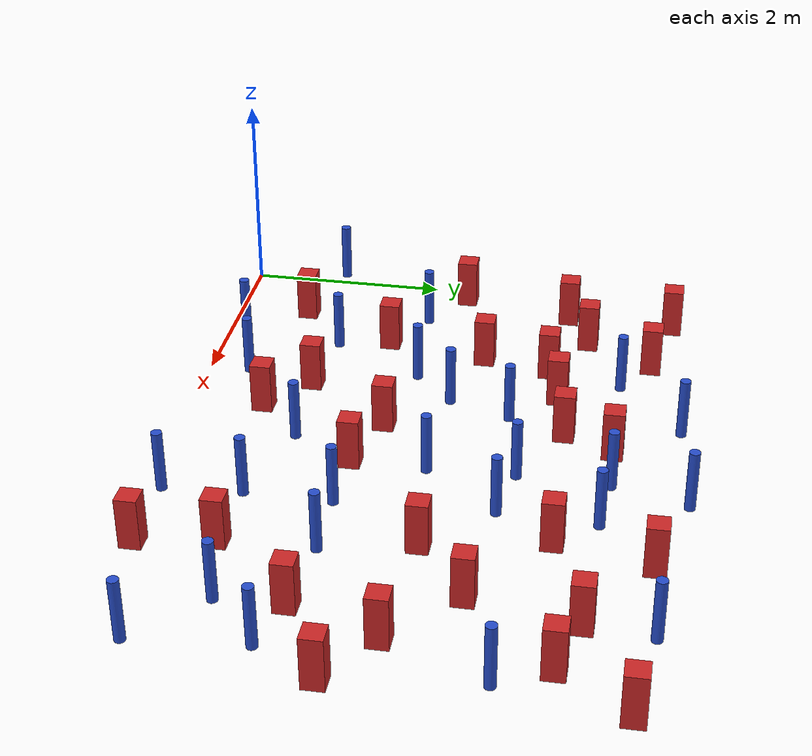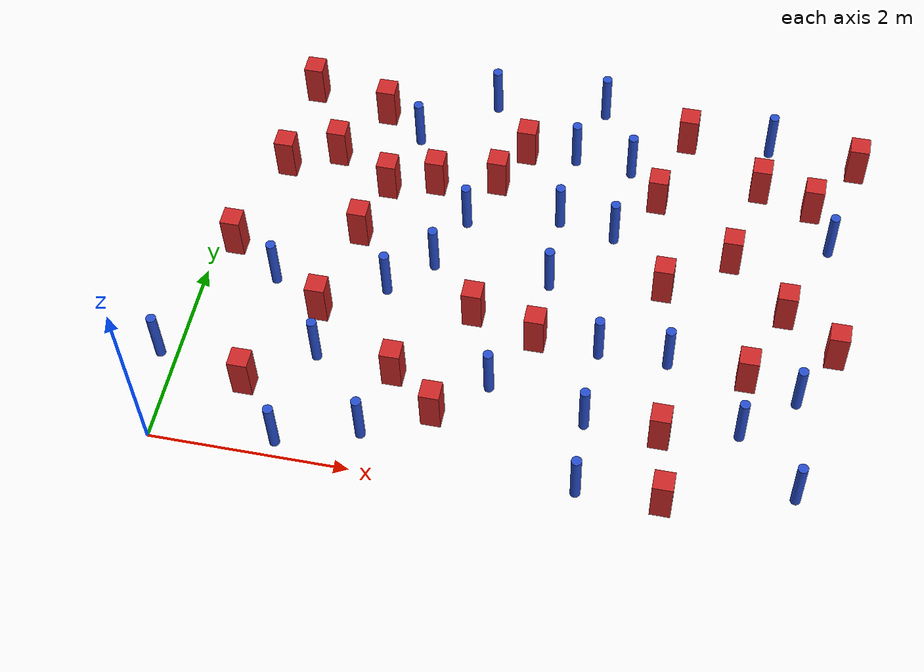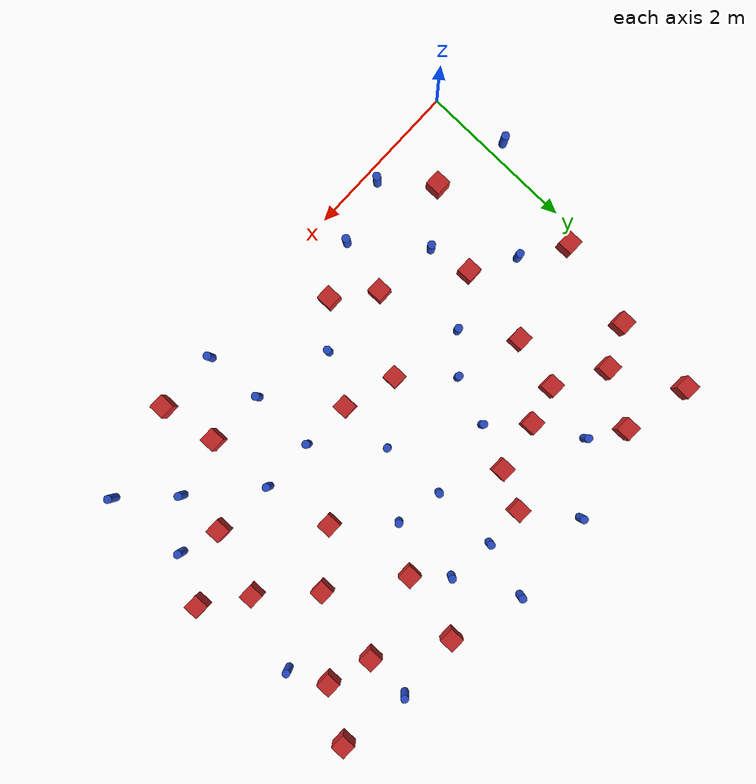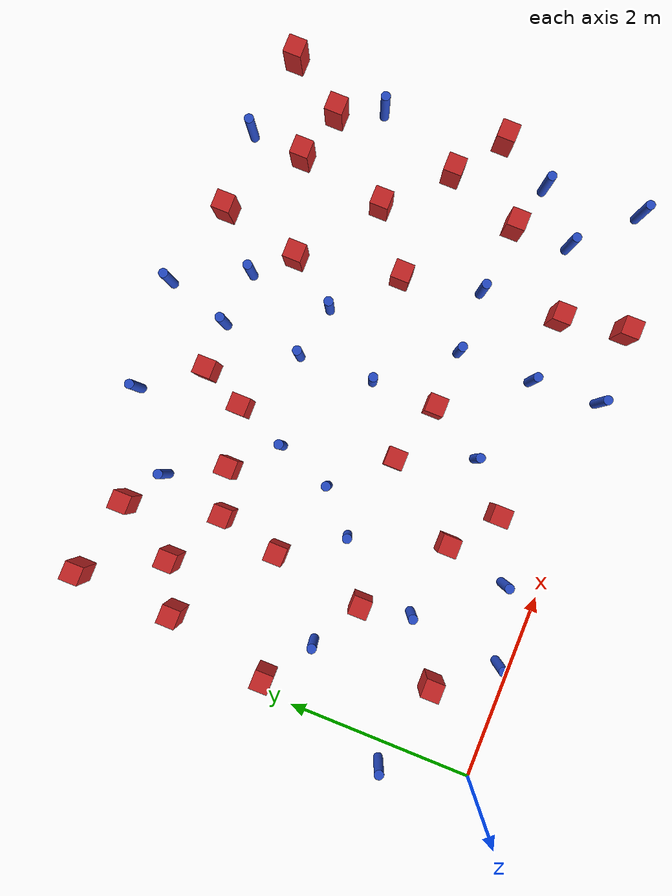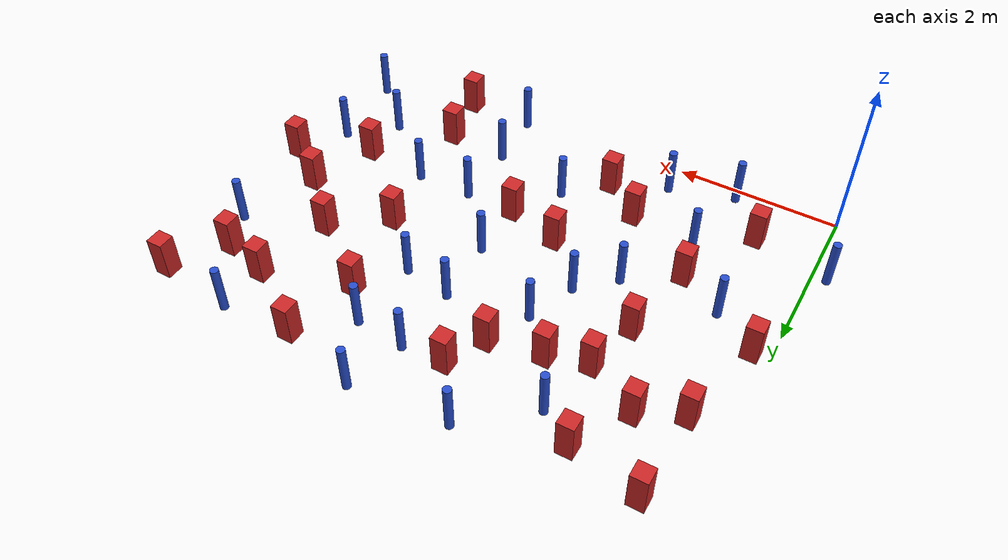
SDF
<sdf version="1.6">
 <model name="dense_31">
  <model name="square_post_obstacle1">
   <static>true</static>
   <pose>0.463909834269 3.49342118369 1.91545236811e-07 -7.35059704564e-06 1.12565212e-07 2.39332434364e-05</pose>
   <link name="link">
    <pose>0 0 0.25 0 -0 0</pose>
    <inertial>
     <mass>100</mass>
     <inertia>
      <ixx>0.166667</ixx>
      <ixy>0</ixy>
      <ixz>0</ixz>
      <iyy>0.166667</iyy>
      <iyz>0</iyz>
      <izz>0.166667</izz>
     </inertia>
    </inertial>
    <collision name="collision"><geometry><box><size>.2 .2 .5</size></box></geometry></collision>
    <visual name="visual">
     <geometry><box><size>.2 .2 .5</size></box></geometry>
     <material>
      <script><name>Gazebo/Red</name><uri>file://media/materials/scripts/gazebo.material</uri></script>
     </material>
    </visual>
   </link>
  </model>
  <model name="pole_obstacle4">
   <static>true</static>
   <pose>4.11311792491 0.900247781949 7.38925637345e-09 -8.47170692799e-08 1.24976765038e-08 -1.74513093018e-07</pose>
   <link name="link">
    <pose>0 0 0.3 0 -0 0</pose>
    <inertial>
     <mass>1</mass>
     <inertia><ixx>0.145833</ixx><ixy>0</ixy><ixz>0</ixz><iyy>0.145833</iyy><iyz>0</iyz><izz>0.125</izz></inertia>
    </inertial>
    <collision name="collision">
     <geometry><cylinder><radius>0.05</radius><length>.6</length></cylinder></geometry>
    </collision>
    <visual name="visual">
     <geometry><cylinder><radius>0.05</radius><length>.6</length></cylinder></geometry>
     <material>
      <script><name>Gazebo/Blue</name><uri>file://media/materials/scripts/gazebo.material</uri></script>
     </material>
    </visual>
   </link>
  </model>
  <model name="square_post_obstacle12">
   <static>true</static>
   <pose>4.85128423616 0.870556990266 1.91545236811e-07 -7.35059704564e-06 1.12565212e-07 2.39332434364e-05</pose>
   <link name="link">
    <pose>0 0 0.25 0 -0 0</pose>
    <inertial>
     <mass>100</mass>
     <inertia>
      <ixx>0.166667</ixx>
      <ixy>0</ixy>
      <ixz>0</ixz>
      <iyy>0.166667</iyy>
      <iyz>0</iyz>
      <izz>0.166667</izz>
     </inertia>
    </inertial>
    <collision name="collision"><geometry><box><size>.2 .2 .5</size></box></geometry></collision>
    <visual name="visual">
     <geometry><box><size>.2 .2 .5</size></box></geometry>
     <material>
      <script><name>Gazebo/Red</name><uri>file://media/materials/scripts/gazebo.material</uri></script>
     </material>
    </visual>
   </link>
  </model>
  <model name="square_post_obstacle13">
   <static>true</static>
   <pose>4.42640117851 3.71198191929 1.91545236811e-07 -7.35059704564e-06 1.12565212e-07 2.39332434364e-05</pose>
   <link name="link">
    <pose>0 0 0.25 0 -0 0</pose>
    <inertial>
     <mass>100</mass>
     <inertia>
      <ixx>0.166667</ixx>
      <ixy>0</ixy>
      <ixz>0</ixz>
      <iyy>0.166667</iyy>
      <iyz>0</iyz>
      <izz>0.166667</izz>
     </inertia>
    </inertial>
    <collision name="collision"><geometry><box><size>.2 .2 .5</size></box></geometry></collision>
    <visual name="visual">
     <geometry><box><size>.2 .2 .5</size></box></geometry>
     <material>
      <script><name>Gazebo/Red</name><uri>file://media/materials/scripts/gazebo.material</uri></script>
     </material>
    </visual>
   </link>
  </model>
  <model name="square_post_obstacle18">
   <static>true</static>
   <pose>4.64170518958 2.58827040064 1.91545236811e-07 -7.35059704564e-06 1.12565212e-07 2.39332434364e-05</pose>
   <link name="link">
    <pose>0 0 0.25 0 -0 0</pose>
    <inertial>
     <mass>100</mass>
     <inertia>
      <ixx>0.166667</ixx>
      <ixy>0</ixy>
      <ixz>0</ixz>
      <iyy>0.166667</iyy>
      <iyz>0</iyz>
      <izz>0.166667</izz>
     </inertia>
    </inertial>
    <collision name="collision"><geometry><box><size>.2 .2 .5</size></box></geometry></collision>
    <visual name="visual">
     <geometry><box><size>.2 .2 .5</size></box></geometry>
     <material>
      <script><name>Gazebo/Red</name><uri>file://media/materials/scripts/gazebo.material</uri></script>
     </material>
    </visual>
   </link>
  </model>
  <model name="square_post_obstacle22">
   <static>true</static>
   <pose>2.95675925891 4.12485396174 1.91545236811e-07 -7.35059704564e-06 1.12565212e-07 2.39332434364e-05</pose>
   <link name="link">
    <pose>0 0 0.25 0 -0 0</pose>
    <inertial>
     <mass>100</mass>
     <inertia>
      <ixx>0.166667</ixx>
      <ixy>0</ixy>
      <ixz>0</ixz>
      <iyy>0.166667</iyy>
      <iyz>0</iyz>
      <izz>0.166667</izz>
     </inertia>
    </inertial>
    <collision name="collision"><geometry><box><size>.2 .2 .5</size></box></geometry></collision>
    <visual name="visual">
     <geometry><box><size>.2 .2 .5</size></box></geometry>
     <material>
      <script><name>Gazebo/Red</name><uri>file://media/materials/scripts/gazebo.material</uri></script>
     </material>
    </visual>
   </link>
  </model>
  <model name="pole_obstacle19">
   <static>true</static>
   <pose>6.20375633269 0.463276716114 7.38925637345e-09 -8.47170692799e-08 1.24976765124e-08 -1.74513093015e-07</pose>
   <link name="link">
    <pose>0 0 0.3 0 -0 0</pose>
    <inertial>
     <mass>1</mass>
     <inertia><ixx>0.145833</ixx><ixy>0</ixy><ixz>0</ixz><iyy>0.145833</iyy><iyz>0</iyz><izz>0.125</izz></inertia>
    </inertial>
    <collision name="collision">
     <geometry><cylinder><radius>0.05</radius><length>.6</length></cylinder></geometry>
    </collision>
    <visual name="visual">
     <geometry><cylinder><radius>0.05</radius><length>.6</length></cylinder></geometry>
     <material>
      <script><name>Gazebo/Blue</name><uri>file://media/materials/scripts/gazebo.material</uri></script>
     </material>
    </visual>
   </link>
  </model>
  <model name="pole_obstacle20">
   <static>true</static>
   <pose>1.76927743961 4.12315953788 7.38925637345e-09 -8.47170692799e-08 1.24976765033e-08 -1.74513093018e-07</pose>
   <link name="link">
    <pose>0 0 0.3 0 -0 0</pose>
    <inertial>
     <mass>1</mass>
     <inertia><ixx>0.145833</ixx><ixy>0</ixy><ixz>0</ixz><iyy>0.145833</iyy><iyz>0</iyz><izz>0.125</izz></inertia>
    </inertial>
    <collision name="collision">
     <geometry><cylinder><radius>0.05</radius><length>.6</length></cylinder></geometry>
    </collision>
    <visual name="visual">
     <geometry><cylinder><radius>0.05</radius><length>.6</length></cylinder></geometry>
     <material>
      <script><name>Gazebo/Blue</name><uri>file://media/materials/scripts/gazebo.material</uri></script>
     </material>
    </visual>
   </link>
  </model>
  <model name="pole_obstacle23">
   <static>true</static>
   <pose>6.11243076244 1.51513492665 7.38925637345e-09 -8.471706928e-08 1.24976765134e-08 -1.74513093015e-07</pose>
   <link name="link">
    <pose>0 0 0.3 0 -0 0</pose>
    <inertial>
     <mass>1</mass>
     <inertia><ixx>0.145833</ixx><ixy>0</ixy><ixz>0</ixz><iyy>0.145833</iyy><iyz>0</iyz><izz>0.125</izz></inertia>
    </inertial>
    <collision name="collision">
     <geometry><cylinder><radius>0.05</radius><length>.6</length></cylinder></geometry>
    </collision>
    <visual name="visual">
     <geometry><cylinder><radius>0.05</radius><length>.6</length></cylinder></geometry>
     <material>
      <script><name>Gazebo/Blue</name><uri>file://media/materials/scripts/gazebo.material</uri></script>
     </material>
    </visual>
   </link>
  </model>
  <model name="square_post_obstacle38">
   <static>true</static>
   <pose>0.769466218042 0.731452612336 1.91545236811e-07 -7.35059704564e-06 1.12565212e-07 2.39332434364e-05</pose>
   <link name="link">
    <pose>0 0 0.25 0 -0 0</pose>
    <inertial>
     <mass>100</mass>
     <inertia>
      <ixx>0.166667</ixx>
      <ixy>0</ixy>
      <ixz>0</ixz>
      <iyy>0.166667</iyy>
      <iyz>0</iyz>
      <izz>0.166667</izz>
     </inertia>
    </inertial>
    <collision name="collision"><geometry><box><size>.2 .2 .5</size></box></geometry></collision>
    <visual name="visual">
     <geometry><box><size>.2 .2 .5</size></box></geometry>
     <material>
      <script><name>Gazebo/Red</name><uri>file://media/materials/scripts/gazebo.material</uri></script>
     </material>
    </visual>
   </link>
  </model>
  <model name="square_post_obstacle39">
   <static>true</static>
   <pose>2.08297527546 3.52736369122 1.91545236811e-07 -7.35059704564e-06 1.12565212e-07 2.39332434364e-05</pose>
   <link name="link">
    <pose>0 0 0.25 0 -0 0</pose>
    <inertial>
     <mass>100</mass>
     <inertia>
      <ixx>0.166667</ixx>
      <ixy>0</ixy>
      <ixz>0</ixz>
      <iyy>0.166667</iyy>
      <iyz>0</iyz>
      <izz>0.166667</izz>
     </inertia>
    </inertial>
    <collision name="collision"><geometry><box><size>.2 .2 .5</size></box></geometry></collision>
    <visual name="visual">
     <geometry><box><size>.2 .2 .5</size></box></geometry>
     <material>
      <script><name>Gazebo/Red</name><uri>file://media/materials/scripts/gazebo.material</uri></script>
     </material>
    </visual>
   </link>
  </model>
  <model name="square_post_obstacle47">
   <static>true</static>
   <pose>6.43437921488 2.0991957555 1.91545236811e-07 -7.35059704564e-06 1.12565212e-07 2.39332434364e-05</pose>
   <link name="link">
    <pose>0 0 0.25 0 -0 0</pose>
    <inertial>
     <mass>100</mass>
     <inertia>
      <ixx>0.166667</ixx>
      <ixy>0</ixy>
      <ixz>0</ixz>
      <iyy>0.166667</iyy>
      <iyz>0</iyz>
      <izz>0.166667</izz>
     </inertia>
    </inertial>
    <collision name="collision"><geometry><box><size>.2 .2 .5</size></box></geometry></collision>
    <visual name="visual">
     <geometry><box><size>.2 .2 .5</size></box></geometry>
     <material>
      <script><name>Gazebo/Red</name><uri>file://media/materials/scripts/gazebo.material</uri></script>
     </material>
    </visual>
   </link>
  </model>
  <model name="square_post_obstacle48">
   <static>true</static>
   <pose>3.47751038495 1.74975684667 1.91545236811e-07 -7.35059704564e-06 1.12565212e-07 2.39332434364e-05</pose>
   <link name="link">
    <pose>0 0 0.25 0 -0 0</pose>
    <inertial>
     <mass>100</mass>
     <inertia>
      <ixx>0.166667</ixx>
      <ixy>0</ixy>
      <ixz>0</ixz>
      <iyy>0.166667</iyy>
      <iyz>0</iyz>
      <izz>0.166667</izz>
     </inertia>
    </inertial>
    <collision name="collision"><geometry><box><size>.2 .2 .5</size></box></geometry></collision>
    <visual name="visual">
     <geometry><box><size>.2 .2 .5</size></box></geometry>
     <material>
      <script><name>Gazebo/Red</name><uri>file://media/materials/scripts/gazebo.material</uri></script>
     </material>
    </visual>
   </link>
  </model>
  <model name="square_post_obstacle52">
   <static>true</static>
   <pose>6.44831381062 4.52177181962 1.91545236811e-07 -7.35059704564e-06 1.12565212e-07 2.39332434364e-05</pose>
   <link name="link">
    <pose>0 0 0.25 0 -0 0</pose>
    <inertial>
     <mass>100</mass>
     <inertia>
      <ixx>0.166667</ixx>
      <ixy>0</ixy>
      <ixz>0</ixz>
      <iyy>0.166667</iyy>
      <iyz>0</iyz>
      <izz>0.166667</izz>
     </inertia>
    </inertial>
    <collision name="collision"><geometry><box><size>.2 .2 .5</size></box></geometry></collision>
    <visual name="visual">
     <geometry><box><size>.2 .2 .5</size></box></geometry>
     <material>
      <script><name>Gazebo/Red</name><uri>file://media/materials/scripts/gazebo.material</uri></script>
     </material>
    </visual>
   </link>
  </model>
  <model name="pole_obstacle53">
   <static>true</static>
   <pose>2.49972387664 3.10083860365 7.38925637345e-09 -8.47170692798e-08 1.24976764939e-08 -1.74513093025e-07</pose>
   <link name="link">
    <pose>0 0 0.3 0 -0 0</pose>
    <inertial>
     <mass>1</mass>
     <inertia><ixx>0.145833</ixx><ixy>0</ixy><ixz>0</ixz><iyy>0.145833</iyy><iyz>0</iyz><izz>0.125</izz></inertia>
    </inertial>
    <collision name="collision">
     <geometry><cylinder><radius>0.05</radius><length>.6</length></cylinder></geometry>
    </collision>
    <visual name="visual">
     <geometry><cylinder><radius>0.05</radius><length>.6</length></cylinder></geometry>
     <material>
      <script><name>Gazebo/Blue</name><uri>file://media/materials/scripts/gazebo.material</uri></script>
     </material>
    </visual>
   </link>
  </model>
  <model name="square_post_obstacle63">
   <static>true</static>
   <pose>5.28149180903 3.07424055475 1.91545236811e-07 -7.35059704564e-06 1.12565212e-07 2.39332434364e-05</pose>
   <link name="link">
    <pose>0 0 0.25 0 -0 0</pose>
    <inertial>
     <mass>100</mass>
     <inertia>
      <ixx>0.166667</ixx>
      <ixy>0</ixy>
      <ixz>0</ixz>
      <iyy>0.166667</iyy>
      <iyz>0</iyz>
      <izz>0.166667</izz>
     </inertia>
    </inertial>
    <collision name="collision"><geometry><box><size>.2 .2 .5</size></box></geometry></collision>
    <visual name="visual">
     <geometry><box><size>.2 .2 .5</size></box></geometry>
     <material>
      <script><name>Gazebo/Red</name><uri>file://media/materials/scripts/gazebo.material</uri></script>
     </material>
    </visual>
   </link>
  </model>
  <model name="square_post_obstacle78">
   <static>true</static>
   <pose>1.27041013032 1.71934110343 1.91545236811e-07 -7.35059704564e-06 1.12565212e-07 2.39332434364e-05</pose>
   <link name="link">
    <pose>0 0 0.25 0 -0 0</pose>
    <inertial>
     <mass>100</mass>
     <inertia>
      <ixx>0.166667</ixx>
      <ixy>0</ixy>
      <ixz>0</ixz>
      <iyy>0.166667</iyy>
      <iyz>0</iyz>
      <izz>0.166667</izz>
     </inertia>
    </inertial>
    <collision name="collision"><geometry><box><size>.2 .2 .5</size></box></geometry></collision>
    <visual name="visual">
     <geometry><box><size>.2 .2 .5</size></box></geometry>
     <material>
      <script><name>Gazebo/Red</name><uri>file://media/materials/scripts/gazebo.material</uri></script>
     </material>
    </visual>
   </link>
  </model>
  <model name="pole_obstacle80">
   <static>true</static>
   <pose>1.37296198952 1.1908845068 7.38925637345e-09 -8.471706928e-08 1.24976765079e-08 -1.74513093017e-07</pose>
   <link name="link">
    <pose>0 0 0.3 0 -0 0</pose>
    <inertial>
     <mass>1</mass>
     <inertia><ixx>0.145833</ixx><ixy>0</ixy><ixz>0</ixz><iyy>0.145833</iyy><iyz>0</iyz><izz>0.125</izz></inertia>
    </inertial>
    <collision name="collision">
     <geometry><cylinder><radius>0.05</radius><length>.6</length></cylinder></geometry>
    </collision>
    <visual name="visual">
     <geometry><cylinder><radius>0.05</radius><length>.6</length></cylinder></geometry>
     <material>
      <script><name>Gazebo/Blue</name><uri>file://media/materials/scripts/gazebo.material</uri></script>
     </material>
    </visual>
   </link>
  </model>
  <model name="pole_obstacle84">
   <static>true</static>
   <pose>3.45701429548 3.28425855211 7.38925637345e-09 -8.47170692798e-08 1.24976764939e-08 -1.74513093025e-07</pose>
   <link name="link">
    <pose>0 0 0.3 0 -0 0</pose>
    <inertial>
     <mass>1</mass>
     <inertia><ixx>0.145833</ixx><ixy>0</ixy><ixz>0</ixz><iyy>0.145833</iyy><iyz>0</iyz><izz>0.125</izz></inertia>
    </inertial>
    <collision name="collision">
     <geometry><cylinder><radius>0.05</radius><length>.6</length></cylinder></geometry>
    </collision>
    <visual name="visual">
     <geometry><cylinder><radius>0.05</radius><length>.6</length></cylinder></geometry>
     <material>
      <script><name>Gazebo/Blue</name><uri>file://media/materials/scripts/gazebo.material</uri></script>
     </material>
    </visual>
   </link>
  </model>
  <model name="square_post_obstacle81">
   <static>true</static>
   <pose>4.63355549708 4.59677811266 1.91545236811e-07 -7.35059704564e-06 1.12565212e-07 2.39332434364e-05</pose>
   <link name="link">
    <pose>0 0 0.25 0 -0 0</pose>
    <inertial>
     <mass>100</mass>
     <inertia>
      <ixx>0.166667</ixx>
      <ixy>0</ixy>
      <ixz>0</ixz>
      <iyy>0.166667</iyy>
      <iyz>0</iyz>
      <izz>0.166667</izz>
     </inertia>
    </inertial>
    <collision name="collision"><geometry><box><size>.2 .2 .5</size></box></geometry></collision>
    <visual name="visual">
     <geometry><box><size>.2 .2 .5</size></box></geometry>
     <material>
      <script><name>Gazebo/Red</name><uri>file://media/materials/scripts/gazebo.material</uri></script>
     </material>
    </visual>
   </link>
  </model>
  <model name="square_post_obstacle87">
   <static>true</static>
   <pose>1.35202105723 4.40023427131 1.91545236811e-07 -7.35059704564e-06 1.12565212e-07 2.39332434364e-05</pose>
   <link name="link">
    <pose>0 0 0.25 0 -0 0</pose>
    <inertial>
     <mass>100</mass>
     <inertia>
      <ixx>0.166667</ixx>
      <ixy>0</ixy>
      <ixz>0</ixz>
      <iyy>0.166667</iyy>
      <iyz>0</iyz>
      <izz>0.166667</izz>
     </inertia>
    </inertial>
    <collision name="collision"><geometry><box><size>.2 .2 .5</size></box></geometry></collision>
    <visual name="visual">
     <geometry><box><size>.2 .2 .5</size></box></geometry>
     <material>
      <script><name>Gazebo/Red</name><uri>file://media/materials/scripts/gazebo.material</uri></script>
     </material>
    </visual>
   </link>
  </model>
  <model name="pole_obstacle99">
   <static>true</static>
   <pose>0.728118337144 2.02762595886 7.38925637345e-09 -8.47170692799e-08 1.24976765e-08 -1.7451309302e-07</pose>
   <link name="link">
    <pose>0 0 0.3 0 -0 0</pose>
    <inertial>
     <mass>1</mass>
     <inertia><ixx>0.145833</ixx><ixy>0</ixy><ixz>0</ixz><iyy>0.145833</iyy><iyz>0</iyz><izz>0.125</izz></inertia>
    </inertial>
    <collision name="collision">
     <geometry><cylinder><radius>0.05</radius><length>.6</length></cylinder></geometry>
    </collision>
    <visual name="visual">
     <geometry><cylinder><radius>0.05</radius><length>.6</length></cylinder></geometry>
     <material>
      <script><name>Gazebo/Blue</name><uri>file://media/materials/scripts/gazebo.material</uri></script>
     </material>
    </visual>
   </link>
  </model>
  <model name="pole_obstacle102">
   <static>true</static>
   <pose>3.49086313598 2.46137022069 7.38925637345e-09 -8.47170692798e-08 1.24976764939e-08 -1.74513093025e-07</pose>
   <link name="link">
    <pose>0 0 0.3 0 -0 0</pose>
    <inertial>
     <mass>1</mass>
     <inertia><ixx>0.145833</ixx><ixy>0</ixy><ixz>0</ixz><iyy>0.145833</iyy><iyz>0</iyz><izz>0.125</izz></inertia>
    </inertial>
    <collision name="collision">
     <geometry><cylinder><radius>0.05</radius><length>.6</length></cylinder></geometry>
    </collision>
    <visual name="visual">
     <geometry><cylinder><radius>0.05</radius><length>.6</length></cylinder></geometry>
     <material>
      <script><name>Gazebo/Blue</name><uri>file://media/materials/scripts/gazebo.material</uri></script>
     </material>
    </visual>
   </link>
  </model>
  <model name="square_post_obstacle95">
   <static>true</static>
   <pose>6.03540232982 3.88899969015 1.91545236811e-07 -7.35059704564e-06 1.12565212e-07 2.39332434364e-05</pose>
   <link name="link">
    <pose>0 0 0.25 0 -0 0</pose>
    <inertial>
     <mass>100</mass>
     <inertia>
      <ixx>0.166667</ixx>
      <ixy>0</ixy>
      <ixz>0</ixz>
      <iyy>0.166667</iyy>
      <iyz>0</iyz>
      <izz>0.166667</izz>
     </inertia>
    </inertial>
    <collision name="collision"><geometry><box><size>.2 .2 .5</size></box></geometry></collision>
    <visual name="visual">
     <geometry><box><size>.2 .2 .5</size></box></geometry>
     <material>
      <script><name>Gazebo/Red</name><uri>file://media/materials/scripts/gazebo.material</uri></script>
     </material>
    </visual>
   </link>
  </model>
  <model name="pole_obstacle112">
   <static>true</static>
   <pose>3.69015923442 4.85860702765 7.38925637345e-09 -8.47170692798e-08 1.24976765033e-08 -1.74513093019e-07</pose>
   <link name="link">
    <pose>0 0 0.3 0 -0 0</pose>
    <inertial>
     <mass>1</mass>
     <inertia><ixx>0.145833</ixx><ixy>0</ixy><ixz>0</ixz><iyy>0.145833</iyy><iyz>0</iyz><izz>0.125</izz></inertia>
    </inertial>
    <collision name="collision">
     <geometry><cylinder><radius>0.05</radius><length>.6</length></cylinder></geometry>
    </collision>
    <visual name="visual">
     <geometry><cylinder><radius>0.05</radius><length>.6</length></cylinder></geometry>
     <material>
      <script><name>Gazebo/Blue</name><uri>file://media/materials/scripts/gazebo.material</uri></script>
     </material>
    </visual>
   </link>
  </model>
  <model name="pole_obstacle113">
   <static>true</static>
   <pose>6.25933875689 3.42101485677 7.38925637345e-09 -8.47170692798e-08 1.24976764937e-08 -1.74513093023e-07</pose>
   <link name="link">
    <pose>0 0 0.3 0 -0 0</pose>
    <inertial>
     <mass>1</mass>
     <inertia><ixx>0.145833</ixx><ixy>0</ixy><ixz>0</ixz><iyy>0.145833</iyy><iyz>0</iyz><izz>0.125</izz></inertia>
    </inertial>
    <collision name="collision">
     <geometry><cylinder><radius>0.05</radius><length>.6</length></cylinder></geometry>
    </collision>
    <visual name="visual">
     <geometry><cylinder><radius>0.05</radius><length>.6</length></cylinder></geometry>
     <material>
      <script><name>Gazebo/Blue</name><uri>file://media/materials/scripts/gazebo.material</uri></script>
     </material>
    </visual>
   </link>
  </model>
  <model name="pole_obstacle116">
   <static>true</static>
   <pose>3.12870632285 1.1459800808 7.38925637345e-09 -8.471706928e-08 1.24976765152e-08 -1.74513093012e-07</pose>
   <link name="link">
    <pose>0 0 0.3 0 -0 0</pose>
    <inertial>
     <mass>1</mass>
     <inertia><ixx>0.145833</ixx><ixy>0</ixy><ixz>0</ixz><iyy>0.145833</iyy><iyz>0</iyz><izz>0.125</izz></inertia>
    </inertial>
    <collision name="collision">
     <geometry><cylinder><radius>0.05</radius><length>.6</length></cylinder></geometry>
    </collision>
    <visual name="visual">
     <geometry><cylinder><radius>0.05</radius><length>.6</length></cylinder></geometry>
     <material>
      <script><name>Gazebo/Blue</name><uri>file://media/materials/scripts/gazebo.material</uri></script>
     </material>
    </visual>
   </link>
  </model>
  <model name="pole_obstacle122">
   <static>true</static>
   <pose>4.81335820865 1.73557116808 7.38925637345e-09 -8.471706928e-08 1.24976765134e-08 -1.74513093015e-07</pose>
   <link name="link">
    <pose>0 0 0.3 0 -0 0</pose>
    <inertial>
     <mass>1</mass>
     <inertia><ixx>0.145833</ixx><ixy>0</ixy><ixz>0</ixz><iyy>0.145833</iyy><iyz>0</iyz><izz>0.125</izz></inertia>
    </inertial>
    <collision name="collision">
     <geometry><cylinder><radius>0.05</radius><length>.6</length></cylinder></geometry>
    </collision>
    <visual name="visual">
     <geometry><cylinder><radius>0.05</radius><length>.6</length></cylinder></geometry>
     <material>
      <script><name>Gazebo/Blue</name><uri>file://media/materials/scripts/gazebo.material</uri></script>
     </material>
    </visual>
   </link>
  </model>
  <model name="pole_obstacle130">
   <static>true</static>
   <pose>4.15730157851 0.154536090212 7.38925637345e-09 -8.47170692801e-08 1.24976765186e-08 -1.74513093012e-07</pose>
   <link name="link">
    <pose>0 0 0.3 0 -0 0</pose>
    <inertial>
     <mass>1</mass>
     <inertia><ixx>0.145833</ixx><ixy>0</ixy><ixz>0</ixz><iyy>0.145833</iyy><iyz>0</iyz><izz>0.125</izz></inertia>
    </inertial>
    <collision name="collision">
     <geometry><cylinder><radius>0.05</radius><length>.6</length></cylinder></geometry>
    </collision>
    <visual name="visual">
     <geometry><cylinder><radius>0.05</radius><length>.6</length></cylinder></geometry>
     <material>
      <script><name>Gazebo/Blue</name><uri>file://media/materials/scripts/gazebo.material</uri></script>
     </material>
    </visual>
   </link>
  </model>
  <model name="pole_obstacle136">
   <static>true</static>
   <pose>3.48284960505 4.14823346513 7.38925637345e-09 -8.47170692798e-08 1.24976765033e-08 -1.74513093019e-07</pose>
   <link name="link">
    <pose>0 0 0.3 0 -0 0</pose>
    <inertial>
     <mass>1</mass>
     <inertia><ixx>0.145833</ixx><ixy>0</ixy><ixz>0</ixz><iyy>0.145833</iyy><iyz>0</iyz><izz>0.125</izz></inertia>
    </inertial>
    <collision name="collision">
     <geometry><cylinder><radius>0.05</radius><length>.6</length></cylinder></geometry>
    </collision>
    <visual name="visual">
     <geometry><cylinder><radius>0.05</radius><length>.6</length></cylinder></geometry>
     <material>
      <script><name>Gazebo/Blue</name><uri>file://media/materials/scripts/gazebo.material</uri></script>
     </material>
    </visual>
   </link>
  </model>
  <model name="pole_obstacle140">
   <static>true</static>
   <pose>5.60692441553 1.04753797821 7.38925637345e-09 -8.47170692801e-08 1.24976765139e-08 -1.74513093014e-07</pose>
   <link name="link">
    <pose>0 0 0.3 0 -0 0</pose>
    <inertial>
     <mass>1</mass>
     <inertia><ixx>0.145833</ixx><ixy>0</ixy><ixz>0</ixz><iyy>0.145833</iyy><iyz>0</iyz><izz>0.125</izz></inertia>
    </inertial>
    <collision name="collision">
     <geometry><cylinder><radius>0.05</radius><length>.6</length></cylinder></geometry>
    </collision>
    <visual name="visual">
     <geometry><cylinder><radius>0.05</radius><length>.6</length></cylinder></geometry>
     <material>
      <script><name>Gazebo/Blue</name><uri>file://media/materials/scripts/gazebo.material</uri></script>
     </material>
    </visual>
   </link>
  </model>
  <model name="square_post_obstacle127">
   <static>true</static>
   <pose>2.65721495717 0.718231095662 1.91545236811e-07 -7.35059704564e-06 1.12565212e-07 2.39332434364e-05</pose>
   <link name="link">
    <pose>0 0 0.25 0 -0 0</pose>
    <inertial>
     <mass>100</mass>
     <inertia>
      <ixx>0.166667</ixx>
      <ixy>0</ixy>
      <ixz>0</ixz>
      <iyy>0.166667</iyy>
      <iyz>0</iyz>
      <izz>0.166667</izz>
     </inertia>
    </inertial>
    <collision name="collision"><geometry><box><size>.2 .2 .5</size></box></geometry></collision>
    <visual name="visual">
     <geometry><box><size>.2 .2 .5</size></box></geometry>
     <material>
      <script><name>Gazebo/Red</name><uri>file://media/materials/scripts/gazebo.material</uri></script>
     </material>
    </visual>
   </link>
  </model>
  <model name="square_post_obstacle128">
   <static>true</static>
   <pose>0.209009174162 2.3724821208 1.91545236811e-07 -7.35059704564e-06 1.12565212e-07 2.39332434364e-05</pose>
   <link name="link">
    <pose>0 0 0.25 0 -0 0</pose>
    <inertial>
     <mass>100</mass>
     <inertia>
      <ixx>0.166667</ixx>
      <ixy>0</ixy>
      <ixz>0</ixz>
      <iyy>0.166667</iyy>
      <iyz>0</iyz>
      <izz>0.166667</izz>
     </inertia>
    </inertial>
    <collision name="collision"><geometry><box><size>.2 .2 .5</size></box></geometry></collision>
    <visual name="visual">
     <geometry><box><size>.2 .2 .5</size></box></geometry>
     <material>
      <script><name>Gazebo/Red</name><uri>file://media/materials/scripts/gazebo.material</uri></script>
     </material>
    </visual>
   </link>
  </model>
  <model name="square_post_obstacle129">
   <static>true</static>
   <pose>2.18158028757 1.098842467 1.91545236811e-07 -7.35059704564e-06 1.12565212e-07 2.39332434364e-05</pose>
   <link name="link">
    <pose>0 0 0.25 0 -0 0</pose>
    <inertial>
     <mass>100</mass>
     <inertia>
      <ixx>0.166667</ixx>
      <ixy>0</ixy>
      <ixz>0</ixz>
      <iyy>0.166667</iyy>
      <iyz>0</iyz>
      <izz>0.166667</izz>
     </inertia>
    </inertial>
    <collision name="collision"><geometry><box><size>.2 .2 .5</size></box></geometry></collision>
    <visual name="visual">
     <geometry><box><size>.2 .2 .5</size></box></geometry>
     <material>
      <script><name>Gazebo/Red</name><uri>file://media/materials/scripts/gazebo.material</uri></script>
     </material>
    </visual>
   </link>
  </model>
  <model name="square_post_obstacle135">
   <static>true</static>
   <pose>5.89407367276 2.49040648923 1.91545236811e-07 -7.35059704564e-06 1.12565212e-07 2.39332434364e-05</pose>
   <link name="link">
    <pose>0 0 0.25 0 -0 0</pose>
    <inertial>
     <mass>100</mass>
     <inertia>
      <ixx>0.166667</ixx>
      <ixy>0</ixy>
      <ixz>0</ixz>
      <iyy>0.166667</iyy>
      <iyz>0</iyz>
      <izz>0.166667</izz>
     </inertia>
    </inertial>
    <collision name="collision"><geometry><box><size>.2 .2 .5</size></box></geometry></collision>
    <visual name="visual">
     <geometry><box><size>.2 .2 .5</size></box></geometry>
     <material>
      <script><name>Gazebo/Red</name><uri>file://media/materials/scripts/gazebo.material</uri></script>
     </material>
    </visual>
   </link>
  </model>
  <model name="pole_obstacle147">
   <static>true</static>
   <pose>1.22609296107 0.16071369431 7.38925637345e-09 -8.471706928e-08 1.24976765118e-08 -1.74513093013e-07</pose>
   <link name="link">
    <pose>0 0 0.3 0 -0 0</pose>
    <inertial>
     <mass>1</mass>
     <inertia><ixx>0.145833</ixx><ixy>0</ixy><ixz>0</ixz><iyy>0.145833</iyy><iyz>0</iyz><izz>0.125</izz></inertia>
    </inertial>
    <collision name="collision">
     <geometry><cylinder><radius>0.05</radius><length>.6</length></cylinder></geometry>
    </collision>
    <visual name="visual">
     <geometry><cylinder><radius>0.05</radius><length>.6</length></cylinder></geometry>
     <material>
      <script><name>Gazebo/Blue</name><uri>file://media/materials/scripts/gazebo.material</uri></script>
     </material>
    </visual>
   </link>
  </model>
  <model name="pole_obstacle153">
   <static>true</static>
   <pose>2.2831176879 2.49677284236 7.38925637345e-09 -8.47170692798e-08 1.24976764939e-08 -1.74513093025e-07</pose>
   <link name="link">
    <pose>0 0 0.3 0 -0 0</pose>
    <inertial>
     <mass>1</mass>
     <inertia><ixx>0.145833</ixx><ixy>0</ixy><ixz>0</ixz><iyy>0.145833</iyy><iyz>0</iyz><izz>0.125</izz></inertia>
    </inertial>
    <collision name="collision">
     <geometry><cylinder><radius>0.05</radius><length>.6</length></cylinder></geometry>
    </collision>
    <visual name="visual">
     <geometry><cylinder><radius>0.05</radius><length>.6</length></cylinder></geometry>
     <material>
      <script><name>Gazebo/Blue</name><uri>file://media/materials/scripts/gazebo.material</uri></script>
     </material>
    </visual>
   </link>
  </model>
  <model name="square_post_obstacle143">
   <static>true</static>
   <pose>4.97231283679 0.160284402083 1.91545236811e-07 -7.35059704564e-06 1.12565212e-07 2.39332434364e-05</pose>
   <link name="link">
    <pose>0 0 0.25 0 -0 0</pose>
    <inertial>
     <mass>100</mass>
     <inertia>
      <ixx>0.166667</ixx>
      <ixy>0</ixy>
      <ixz>0</ixz>
      <iyy>0.166667</iyy>
      <iyz>0</iyz>
      <izz>0.166667</izz>
     </inertia>
    </inertial>
    <collision name="collision"><geometry><box><size>.2 .2 .5</size></box></geometry></collision>
    <visual name="visual">
     <geometry><box><size>.2 .2 .5</size></box></geometry>
     <material>
      <script><name>Gazebo/Red</name><uri>file://media/materials/scripts/gazebo.material</uri></script>
     </material>
    </visual>
   </link>
  </model>
  <model name="pole_obstacle155">
   <static>true</static>
   <pose>4.04632437212 3.17565505135 7.38925637345e-09 -8.47170692799e-08 1.24976765e-08 -1.7451309302e-07</pose>
   <link name="link">
    <pose>0 0 0.3 0 -0 0</pose>
    <inertial>
     <mass>1</mass>
     <inertia><ixx>0.145833</ixx><ixy>0</ixy><ixz>0</ixz><iyy>0.145833</iyy><iyz>0</iyz><izz>0.125</izz></inertia>
    </inertial>
    <collision name="collision">
     <geometry><cylinder><radius>0.05</radius><length>.6</length></cylinder></geometry>
    </collision>
    <visual name="visual">
     <geometry><cylinder><radius>0.05</radius><length>.6</length></cylinder></geometry>
     <material>
      <script><name>Gazebo/Blue</name><uri>file://media/materials/scripts/gazebo.material</uri></script>
     </material>
    </visual>
   </link>
  </model>
  <model name="pole_obstacle162">
   <static>true</static>
   <pose>2.50753851093 4.74440295036 7.38925637345e-09 -8.47170692798e-08 1.24976765033e-08 -1.74513093019e-07</pose>
   <link name="link">
    <pose>0 0 0.3 0 -0 0</pose>
    <inertial>
     <mass>1</mass>
     <inertia><ixx>0.145833</ixx><ixy>0</ixy><ixz>0</ixz><iyy>0.145833</iyy><iyz>0</iyz><izz>0.125</izz></inertia>
    </inertial>
    <collision name="collision">
     <geometry><cylinder><radius>0.05</radius><length>.6</length></cylinder></geometry>
    </collision>
    <visual name="visual">
     <geometry><cylinder><radius>0.05</radius><length>.6</length></cylinder></geometry>
     <material>
      <script><name>Gazebo/Blue</name><uri>file://media/materials/scripts/gazebo.material</uri></script>
     </material>
    </visual>
   </link>
  </model>
  <model name="pole_obstacle164">
   <static>true</static>
   <pose>4.09067226637 4.08936558936 7.38925637345e-09 -8.47170692796e-08 1.24976764786e-08 -1.74513093032e-07</pose>
   <link name="link">
    <pose>0 0 0.3 0 -0 0</pose>
    <inertial>
     <mass>1</mass>
     <inertia><ixx>0.145833</ixx><ixy>0</ixy><ixz>0</ixz><iyy>0.145833</iyy><iyz>0</iyz><izz>0.125</izz></inertia>
    </inertial>
    <collision name="collision">
     <geometry><cylinder><radius>0.05</radius><length>.6</length></cylinder></geometry>
    </collision>
    <visual name="visual">
     <geometry><cylinder><radius>0.05</radius><length>.6</length></cylinder></geometry>
     <material>
      <script><name>Gazebo/Blue</name><uri>file://media/materials/scripts/gazebo.material</uri></script>
     </material>
    </visual>
   </link>
  </model>
  <model name="pole_obstacle165">
   <static>true</static>
   <pose>1.87371854379 2.10334875177 7.38925637345e-09 -8.47170692799e-08 1.24976765053e-08 -1.74513093017e-07</pose>
   <link name="link">
    <pose>0 0 0.3 0 -0 0</pose>
    <inertial>
     <mass>1</mass>
     <inertia><ixx>0.145833</ixx><ixy>0</ixy><ixz>0</ixz><iyy>0.145833</iyy><iyz>0</iyz><izz>0.125</izz></inertia>
    </inertial>
    <collision name="collision">
     <geometry><cylinder><radius>0.05</radius><length>.6</length></cylinder></geometry>
    </collision>
    <visual name="visual">
     <geometry><cylinder><radius>0.05</radius><length>.6</length></cylinder></geometry>
     <material>
      <script><name>Gazebo/Blue</name><uri>file://media/materials/scripts/gazebo.material</uri></script>
     </material>
    </visual>
   </link>
  </model>
  <model name="square_post_obstacle159">
   <static>true</static>
   <pose>2.81113205291 1.93954043692 1.91545236811e-07 -7.35059704564e-06 1.12565212e-07 2.39332434364e-05</pose>
   <link name="link">
    <pose>0 0 0.25 0 -0 0</pose>
    <inertial>
     <mass>100</mass>
     <inertia>
      <ixx>0.166667</ixx>
      <ixy>0</ixy>
      <ixz>0</ixz>
      <iyy>0.166667</iyy>
      <iyz>0</iyz>
      <izz>0.166667</izz>
     </inertia>
    </inertial>
    <collision name="collision"><geometry><box><size>.2 .2 .5</size></box></geometry></collision>
    <visual name="visual">
     <geometry><box><size>.2 .2 .5</size></box></geometry>
     <material>
      <script><name>Gazebo/Red</name><uri>file://media/materials/scripts/gazebo.material</uri></script>
     </material>
    </visual>
   </link>
  </model>
  <model name="square_post_obstacle164">
   <static>true</static>
   <pose>1.59699601284 3.39142102127 1.91545236811e-07 -7.35059704564e-06 1.12565212e-07 2.39332434364e-05</pose>
   <link name="link">
    <pose>0 0 0.25 0 -0 0</pose>
    <inertial>
     <mass>100</mass>
     <inertia>
      <ixx>0.166667</ixx>
      <ixy>0</ixy>
      <ixz>0</ixz>
      <iyy>0.166667</iyy>
      <iyz>0</iyz>
      <izz>0.166667</izz>
     </inertia>
    </inertial>
    <collision name="collision"><geometry><box><size>.2 .2 .5</size></box></geometry></collision>
    <visual name="visual">
     <geometry><box><size>.2 .2 .5</size></box></geometry>
     <material>
      <script><name>Gazebo/Red</name><uri>file://media/materials/scripts/gazebo.material</uri></script>
     </material>
    </visual>
   </link>
  </model>
  <model name="pole_obstacle183">
   <static>true</static>
   <pose>2.01489702912 0.399947425518 7.38925637345e-09 -8.47170692801e-08 1.24976765176e-08 -1.74513093011e-07</pose>
   <link name="link">
    <pose>0 0 0.3 0 -0 0</pose>
    <inertial>
     <mass>1</mass>
     <inertia><ixx>0.145833</ixx><ixy>0</ixy><ixz>0</ixz><iyy>0.145833</iyy><iyz>0</iyz><izz>0.125</izz></inertia>
    </inertial>
    <collision name="collision">
     <geometry><cylinder><radius>0.05</radius><length>.6</length></cylinder></geometry>
    </collision>
    <visual name="visual">
     <geometry><cylinder><radius>0.05</radius><length>.6</length></cylinder></geometry>
     <material>
      <script><name>Gazebo/Blue</name><uri>file://media/materials/scripts/gazebo.material</uri></script>
     </material>
    </visual>
   </link>
  </model>
  <model name="square_post_obstacle179">
   <static>true</static>
   <pose>1.44850268647 2.72467835274 1.91545236811e-07 -7.35059704564e-06 1.12565212e-07 2.39332434364e-05</pose>
   <link name="link">
    <pose>0 0 0.25 0 -0 0</pose>
    <inertial>
     <mass>100</mass>
     <inertia>
      <ixx>0.166667</ixx>
      <ixy>0</ixy>
      <ixz>0</ixz>
      <iyy>0.166667</iyy>
      <iyz>0</iyz>
      <izz>0.166667</izz>
     </inertia>
    </inertial>
    <collision name="collision"><geometry><box><size>.2 .2 .5</size></box></geometry></collision>
    <visual name="visual">
     <geometry><box><size>.2 .2 .5</size></box></geometry>
     <material>
      <script><name>Gazebo/Red</name><uri>file://media/materials/scripts/gazebo.material</uri></script>
     </material>
    </visual>
   </link>
  </model>
  <model name="square_post_obstacle191">
   <static>true</static>
   <pose>5.59867862605 1.66650298225 1.91545236811e-07 -7.35059704564e-06 1.12565212e-07 2.39332434364e-05</pose>
   <link name="link">
    <pose>0 0 0.25 0 -0 0</pose>
    <inertial>
     <mass>100</mass>
     <inertia>
      <ixx>0.166667</ixx>
      <ixy>0</ixy>
      <ixz>0</ixz>
      <iyy>0.166667</iyy>
      <iyz>0</iyz>
      <izz>0.166667</izz>
     </inertia>
    </inertial>
    <collision name="collision"><geometry><box><size>.2 .2 .5</size></box></geometry></collision>
    <visual name="visual">
     <geometry><box><size>.2 .2 .5</size></box></geometry>
     <material>
      <script><name>Gazebo/Red</name><uri>file://media/materials/scripts/gazebo.material</uri></script>
     </material>
    </visual>
   </link>
  </model>
  <model name="square_post_obstacle192">
   <static>true</static>
   <pose>2.72738927853 3.64983182935 1.91545236811e-07 -7.35059704564e-06 1.12565212e-07 2.39332434364e-05</pose>
   <link name="link">
    <pose>0 0 0.25 0 -0 0</pose>
    <inertial>
     <mass>100</mass>
     <inertia>
      <ixx>0.166667</ixx>
      <ixy>0</ixy>
      <ixz>0</ixz>
      <iyy>0.166667</iyy>
      <iyz>0</iyz>
      <izz>0.166667</izz>
     </inertia>
    </inertial>
    <collision name="collision"><geometry><box><size>.2 .2 .5</size></box></geometry></collision>
    <visual name="visual">
     <geometry><box><size>.2 .2 .5</size></box></geometry>
     <material>
      <script><name>Gazebo/Red</name><uri>file://media/materials/scripts/gazebo.material</uri></script>
     </material>
    </visual>
   </link>
  </model>
  <model name="square_post_obstacle196">
   <static>true</static>
   <pose>5.47101884932 4.05301806671 1.91545236811e-07 -7.35059704564e-06 1.12565212e-07 2.39332434364e-05</pose>
   <link name="link">
    <pose>0 0 0.25 0 -0 0</pose>
    <inertial>
     <mass>100</mass>
     <inertia>
      <ixx>0.166667</ixx>
      <ixy>0</ixy>
      <ixz>0</ixz>
      <iyy>0.166667</iyy>
      <iyz>0</iyz>
      <izz>0.166667</izz>
     </inertia>
    </inertial>
    <collision name="collision"><geometry><box><size>.2 .2 .5</size></box></geometry></collision>
    <visual name="visual">
     <geometry><box><size>.2 .2 .5</size></box></geometry>
     <material>
      <script><name>Gazebo/Red</name><uri>file://media/materials/scripts/gazebo.material</uri></script>
     </material>
    </visual>
   </link>
  </model>
  <model name="square_post_obstacle197">
   <static>true</static>
   <pose>0.505164932984 4.57664271726 1.91545236811e-07 -7.35059704564e-06 1.12565212e-07 2.39332434364e-05</pose>
   <link name="link">
    <pose>0 0 0.25 0 -0 0</pose>
    <inertial>
     <mass>100</mass>
     <inertia>
      <ixx>0.166667</ixx>
      <ixy>0</ixy>
      <ixz>0</ixz>
      <iyy>0.166667</iyy>
      <iyz>0</iyz>
      <izz>0.166667</izz>
     </inertia>
    </inertial>
    <collision name="collision"><geometry><box><size>.2 .2 .5</size></box></geometry></collision>
    <visual name="visual">
     <geometry><box><size>.2 .2 .5</size></box></geometry>
     <material>
      <script><name>Gazebo/Red</name><uri>file://media/materials/scripts/gazebo.material</uri></script>
     </material>
    </visual>
   </link>
  </model>
  <model name="pole_obstacle191">
   <static>true</static>
   <pose>4.11892156172 1.72681964342 7.38925637345e-09 -8.471706928e-08 1.24976765134e-08 -1.74513093015e-07</pose>
   <link name="link">
    <pose>0 0 0.3 0 -0 0</pose>
    <inertial>
     <mass>1</mass>
     <inertia><ixx>0.145833</ixx><ixy>0</ixy><ixz>0</ixz><iyy>0.145833</iyy><iyz>0</iyz><izz>0.125</izz></inertia>
    </inertial>
    <collision name="collision">
     <geometry><cylinder><radius>0.05</radius><length>.6</length></cylinder></geometry>
    </collision>
    <visual name="visual">
     <geometry><cylinder><radius>0.05</radius><length>.6</length></cylinder></geometry>
     <material>
      <script><name>Gazebo/Blue</name><uri>file://media/materials/scripts/gazebo.material</uri></script>
     </material>
    </visual>
   </link>
  </model>
  <model name="square_post_obstacle208">
   <static>true</static>
   <pose>0.971494811311 3.73755191962 1.91545236811e-07 -7.35059704564e-06 1.12565212e-07 2.39332434364e-05</pose>
   <link name="link">
    <pose>0 0 0.25 0 -0 0</pose>
    <inertial>
     <mass>100</mass>
     <inertia>
      <ixx>0.166667</ixx>
      <ixy>0</ixy>
      <ixz>0</ixz>
      <iyy>0.166667</iyy>
      <iyz>0</iyz>
      <izz>0.166667</izz>
     </inertia>
    </inertial>
    <collision name="collision"><geometry><box><size>.2 .2 .5</size></box></geometry></collision>
    <visual name="visual">
     <geometry><box><size>.2 .2 .5</size></box></geometry>
     <material>
      <script><name>Gazebo/Red</name><uri>file://media/materials/scripts/gazebo.material</uri></script>
     </material>
    </visual>
   </link>
  </model>
  <model name="pole_obstacle209">
   <static>true</static>
   <pose>5.51407037218 4.65225956878 7.38925637345e-09 -8.47170692796e-08 1.24976764786e-08 -1.74513093032e-07</pose>
   <link name="link">
    <pose>0 0 0.3 0 -0 0</pose>
    <inertial>
     <mass>1</mass>
     <inertia><ixx>0.145833</ixx><ixy>0</ixy><ixz>0</ixz><iyy>0.145833</iyy><iyz>0</iyz><izz>0.125</izz></inertia>
    </inertial>
    <collision name="collision">
     <geometry><cylinder><radius>0.05</radius><length>.6</length></cylinder></geometry>
    </collision>
    <visual name="visual">
     <geometry><cylinder><radius>0.05</radius><length>.6</length></cylinder></geometry>
     <material>
      <script><name>Gazebo/Blue</name><uri>file://media/materials/scripts/gazebo.material</uri></script>
     </material>
    </visual>
   </link>
  </model>
  <model name="pole_obstacle211">
   <static>true</static>
   <pose>-0.168186330502 0.944561561245 7.38925637345e-09 -8.47170692798e-08 1.24976764943e-08 -1.74513093024e-07</pose>
   <link name="link">
    <pose>0 0 0.3 0 -0 0</pose>
    <inertial>
     <mass>1</mass>
     <inertia><ixx>0.145833</ixx><ixy>0</ixy><ixz>0</ixz><iyy>0.145833</iyy><iyz>0</iyz><izz>0.125</izz></inertia>
    </inertial>
    <collision name="collision">
     <geometry><cylinder><radius>0.05</radius><length>.6</length></cylinder></geometry>
    </collision>
    <visual name="visual">
     <geometry><cylinder><radius>0.05</radius><length>.6</length></cylinder></geometry>
     <material>
      <script><name>Gazebo/Blue</name><uri>file://media/materials/scripts/gazebo.material</uri></script>
     </material>
    </visual>
   </link>
  </model>
 </model>
</sdf>
